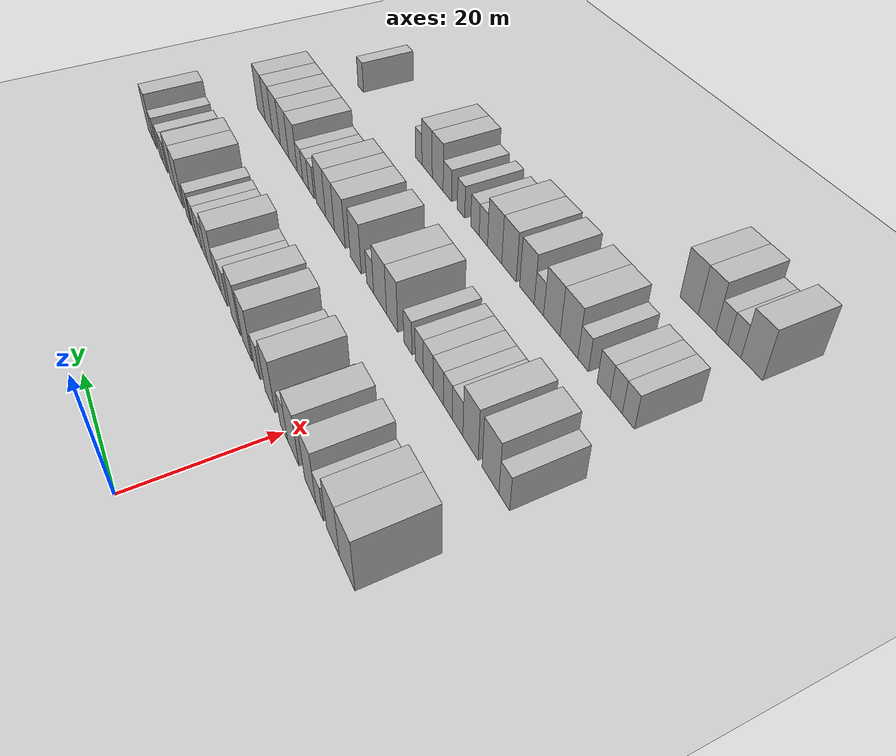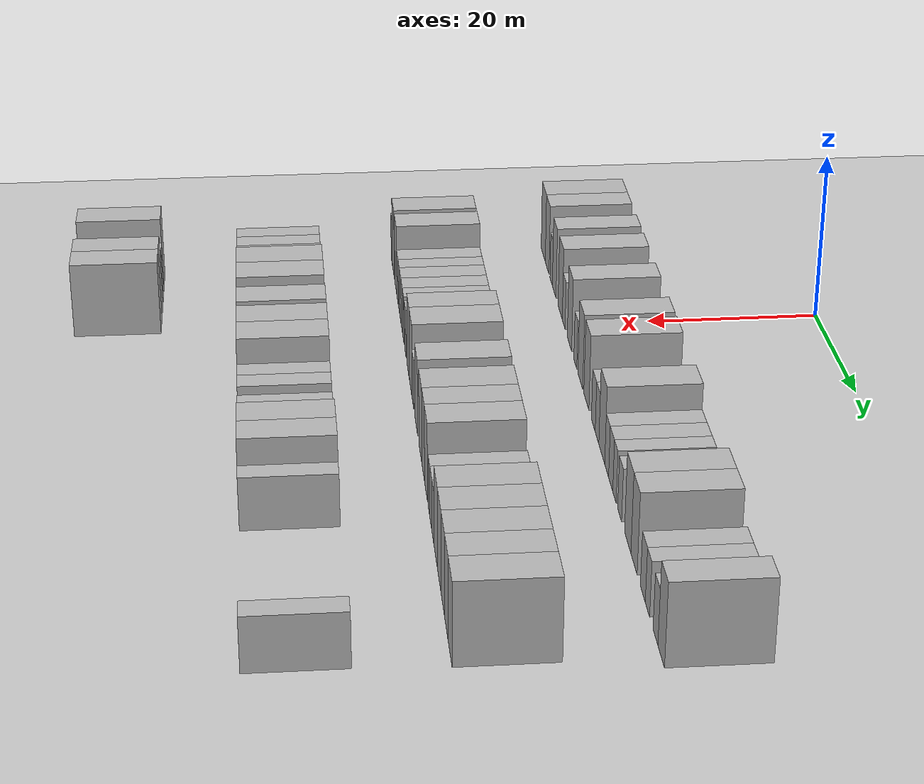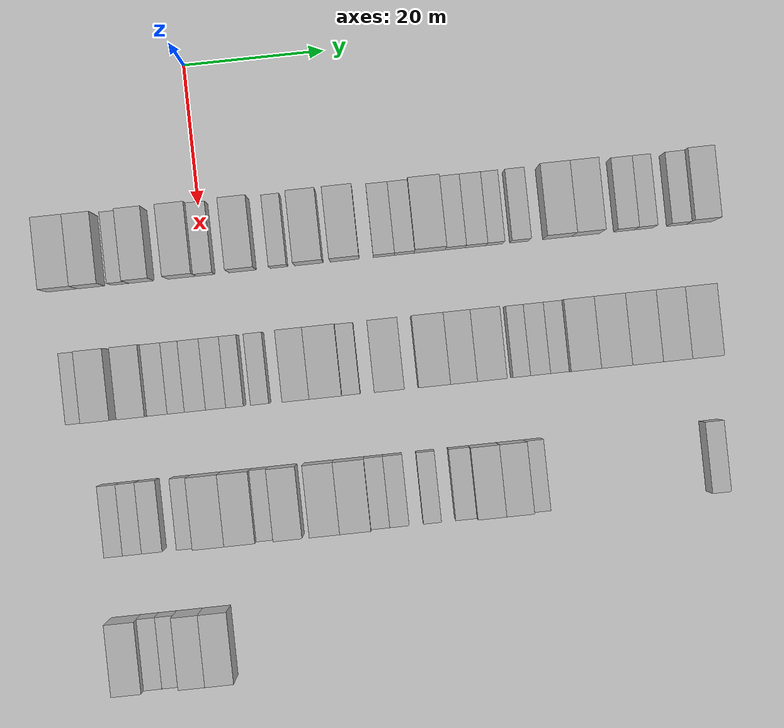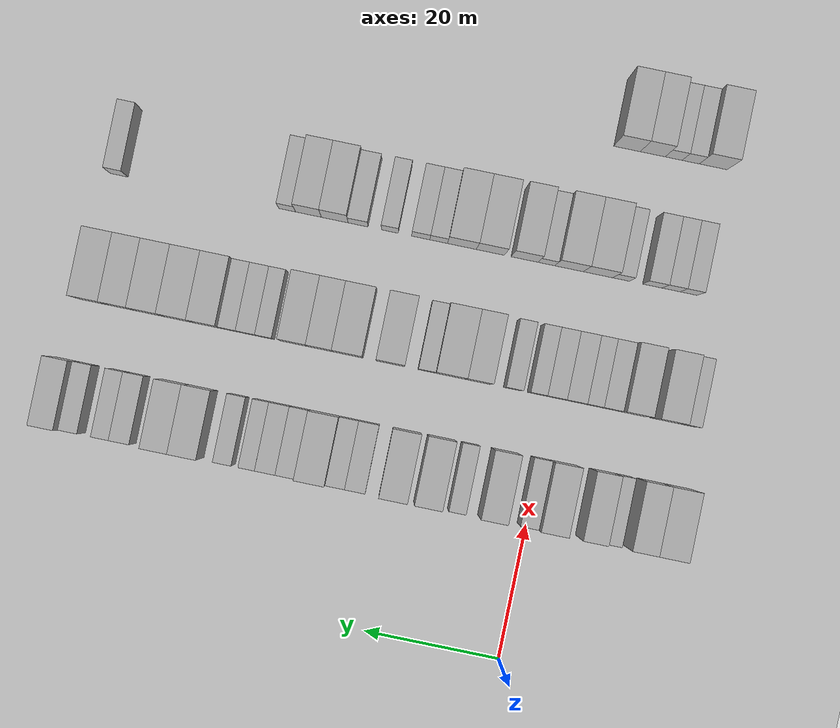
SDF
<sdf version="1.6">
 <world name="default">
  <include><name>ground_plane_1</name><uri>model://HANNAS_ground_plane</uri></include>
  <model name="building_85">
   <static>1</static>
   <pose>25.0000 -20.4585 0 0.000000 0.000000 0.000000</pose>
   <link name="link">
    <pose>0 0 4.50 0 0 0</pose>
    <collision name="collision"><geometry><box><size>10.0000 4.3584 9.0000</size></box></geometry></collision>
    <visual name="visual">
     <cast_shadows>0</cast_shadows>
     <geometry><box><size>10.0000 4.3584 9.0000</size></box></geometry>
     <material>
      <script>
       <uri>model://HANNAS_wall/materials/scripts</uri>
       <uri>model://HANNAS_wall/materials/textures</uri>
       <name>vrc/HANNAS_wall</name>
      </script>
     </material>
    </visual>
   </link>
  </model>
  <model name="building_86">
   <static>1</static>
   <pose>25.0000 -16.3618 0 0.000000 0.000000 0.000000</pose>
   <link name="link">
    <pose>0 0 4.50 0 0 0</pose>
    <collision name="collision"><geometry><box><size>10.0000 3.8350 9.0000</size></box></geometry></collision>
    <visual name="visual">
     <cast_shadows>0</cast_shadows>
     <geometry><box><size>10.0000 3.8350 9.0000</size></box></geometry>
     <material>
      <script>
       <uri>model://HANNAS_wall/materials/scripts</uri>
       <uri>model://HANNAS_wall/materials/textures</uri>
       <name>vrc/HANNAS_wall</name>
      </script>
     </material>
    </visual>
   </link>
  </model>
  <model name="building_87">
   <static>1</static>
   <pose>25.0000 -12.2404 0 0.000000 0.000000 0.000000</pose>
   <link name="link">
    <pose>0 0 3.00 0 0 0</pose>
    <collision name="collision"><geometry><box><size>10.0000 2.4077 6.0000</size></box></geometry></collision>
    <visual name="visual">
     <cast_shadows>0</cast_shadows>
     <geometry><box><size>10.0000 2.4077 6.0000</size></box></geometry>
     <material>
      <script>
       <uri>model://HANNAS_wall/materials/scripts</uri>
       <uri>model://HANNAS_wall/materials/textures</uri>
       <name>vrc/HANNAS_wall</name>
      </script>
     </material>
    </visual>
   </link>
  </model>
  <model name="building_88">
   <static>1</static>
   <pose>25.0000 -9.2104 0 0.000000 0.000000 0.000000</pose>
   <link name="link">
    <pose>0 0 4.50 0 0 0</pose>
    <collision name="collision"><geometry><box><size>10.0000 3.6524 9.0000</size></box></geometry></collision>
    <visual name="visual">
     <cast_shadows>0</cast_shadows>
     <geometry><box><size>10.0000 3.6524 9.0000</size></box></geometry>
     <material>
      <script>
       <uri>model://HANNAS_wall/materials/scripts</uri>
       <uri>model://HANNAS_wall/materials/textures</uri>
       <name>vrc/HANNAS_wall</name>
      </script>
     </material>
    </visual>
   </link>
  </model>
  <model name="building_89">
   <static>1</static>
   <pose>25.0000 -3.3761 0 0.000000 0.000000 0.000000</pose>
   <link name="link">
    <pose>0 0 4.50 0 0 0</pose>
    <collision name="collision"><geometry><box><size>10.0000 4.0163 9.0000</size></box></geometry></collision>
    <visual name="visual">
     <cast_shadows>0</cast_shadows>
     <geometry><box><size>10.0000 4.0163 9.0000</size></box></geometry>
     <material>
      <script>
       <uri>model://HANNAS_wall/materials/scripts</uri>
       <uri>model://HANNAS_wall/materials/textures</uri>
       <name>vrc/HANNAS_wall</name>
      </script>
     </material>
    </visual>
   </link>
  </model>
  <model name="building_90">
   <static>1</static>
   <pose>25.0000 -0.0194 0 0.000000 0.000000 0.000000</pose>
   <link name="link">
    <pose>0 0 3.00 0 0 0</pose>
    <collision name="collision"><geometry><box><size>10.0000 2.6971 6.0000</size></box></geometry></collision>
    <visual name="visual">
     <cast_shadows>0</cast_shadows>
     <geometry><box><size>10.0000 2.6971 6.0000</size></box></geometry>
     <material>
      <script>
       <uri>model://HANNAS_wall/materials/scripts</uri>
       <uri>model://HANNAS_wall/materials/textures</uri>
       <name>vrc/HANNAS_wall</name>
      </script>
     </material>
    </visual>
   </link>
  </model>
  <model name="building_91">
   <static>1</static>
   <pose>25.0000 5.2806 0 0.000000 0.000000 0.000000</pose>
   <link name="link">
    <pose>0 0 4.50 0 0 0</pose>
    <collision name="collision"><geometry><box><size>10.0000 3.9030 9.0000</size></box></geometry></collision>
    <visual name="visual">
     <cast_shadows>0</cast_shadows>
     <geometry><box><size>10.0000 3.9030 9.0000</size></box></geometry>
     <material>
      <script>
       <uri>model://HANNAS_wall/materials/scripts</uri>
       <uri>model://HANNAS_wall/materials/textures</uri>
       <name>vrc/HANNAS_wall</name>
      </script>
     </material>
    </visual>
   </link>
  </model>
  <model name="building_92">
   <static>1</static>
   <pose>25.0000 10.4878 0 0.000000 0.000000 0.000000</pose>
   <link name="link">
    <pose>0 0 3.00 0 0 0</pose>
    <collision name="collision"><geometry><box><size>10.0000 2.5113 6.0000</size></box></geometry></collision>
    <visual name="visual">
     <cast_shadows>0</cast_shadows>
     <geometry><box><size>10.0000 2.5113 6.0000</size></box></geometry>
     <material>
      <script>
       <uri>model://HANNAS_wall/materials/scripts</uri>
       <uri>model://HANNAS_wall/materials/textures</uri>
       <name>vrc/HANNAS_wall</name>
      </script>
     </material>
    </visual>
   </link>
  </model>
  <model name="building_93">
   <static>1</static>
   <pose>25.0000 14.7688 0 0.000000 0.000000 0.000000</pose>
   <link name="link">
    <pose>0 0 4.50 0 0 0</pose>
    <collision name="collision"><geometry><box><size>10.0000 4.0507 9.0000</size></box></geometry></collision>
    <visual name="visual">
     <cast_shadows>0</cast_shadows>
     <geometry><box><size>10.0000 4.0507 9.0000</size></box></geometry>
     <material>
      <script>
       <uri>model://HANNAS_wall/materials/scripts</uri>
       <uri>model://HANNAS_wall/materials/textures</uri>
       <name>vrc/HANNAS_wall</name>
      </script>
     </material>
    </visual>
   </link>
  </model>
  <model name="building_94">
   <static>1</static>
   <pose>25.0000 19.8665 0 0.000000 0.000000 0.000000</pose>
   <link name="link">
    <pose>0 0 4.50 0 0 0</pose>
    <collision name="collision"><geometry><box><size>10.0000 4.1447 9.0000</size></box></geometry></collision>
    <visual name="visual">
     <cast_shadows>0</cast_shadows>
     <geometry><box><size>10.0000 4.1447 9.0000</size></box></geometry>
     <material>
      <script>
       <uri>model://HANNAS_wall/materials/scripts</uri>
       <uri>model://HANNAS_wall/materials/textures</uri>
       <name>vrc/HANNAS_wall</name>
      </script>
     </material>
    </visual>
   </link>
  </model>
  <model name="building_95">
   <static>1</static>
   <pose>25.0000 25.4383 0 0.000000 0.000000 0.000000</pose>
   <link name="link">
    <pose>0 0 3.00 0 0 0</pose>
    <collision name="collision"><geometry><box><size>10.0000 2.9990 6.0000</size></box></geometry></collision>
    <visual name="visual">
     <cast_shadows>0</cast_shadows>
     <geometry><box><size>10.0000 2.9990 6.0000</size></box></geometry>
     <material>
      <script>
       <uri>model://HANNAS_wall/materials/scripts</uri>
       <uri>model://HANNAS_wall/materials/textures</uri>
       <name>vrc/HANNAS_wall</name>
      </script>
     </material>
    </visual>
   </link>
  </model>
  <model name="building_96">
   <static>1</static>
   <pose>25.0000 28.3533 0 0.000000 0.000000 0.000000</pose>
   <link name="link">
    <pose>0 0 3.00 0 0 0</pose>
    <collision name="collision"><geometry><box><size>10.0000 2.8310 6.0000</size></box></geometry></collision>
    <visual name="visual">
     <cast_shadows>0</cast_shadows>
     <geometry><box><size>10.0000 2.8310 6.0000</size></box></geometry>
     <material>
      <script>
       <uri>model://HANNAS_wall/materials/scripts</uri>
       <uri>model://HANNAS_wall/materials/textures</uri>
       <name>vrc/HANNAS_wall</name>
      </script>
     </material>
    </visual>
   </link>
  </model>
  <model name="building_97">
   <static>1</static>
   <pose>25.0000 31.9788 0 0.000000 0.000000 0.000000</pose>
   <link name="link">
    <pose>0 0 4.50 0 0 0</pose>
    <collision name="collision"><geometry><box><size>10.0000 4.4200 9.0000</size></box></geometry></collision>
    <visual name="visual">
     <cast_shadows>0</cast_shadows>
     <geometry><box><size>10.0000 4.4200 9.0000</size></box></geometry>
     <material>
      <script>
       <uri>model://HANNAS_wall/materials/scripts</uri>
       <uri>model://HANNAS_wall/materials/textures</uri>
       <name>vrc/HANNAS_wall</name>
      </script>
     </material>
    </visual>
   </link>
  </model>
  <model name="building_98">
   <static>1</static>
   <pose>25.0000 35.6178 0 0.000000 0.000000 0.000000</pose>
   <link name="link">
    <pose>0 0 3.00 0 0 0</pose>
    <collision name="collision"><geometry><box><size>10.0000 2.8580 6.0000</size></box></geometry></collision>
    <visual name="visual">
     <cast_shadows>0</cast_shadows>
     <geometry><box><size>10.0000 2.8580 6.0000</size></box></geometry>
     <material>
      <script>
       <uri>model://HANNAS_wall/materials/scripts</uri>
       <uri>model://HANNAS_wall/materials/textures</uri>
       <name>vrc/HANNAS_wall</name>
      </script>
     </material>
    </visual>
   </link>
  </model>
  <model name="building_99">
   <static>1</static>
   <pose>25.0000 38.5380 0 0.000000 0.000000 0.000000</pose>
   <link name="link">
    <pose>0 0 3.00 0 0 0</pose>
    <collision name="collision"><geometry><box><size>10.0000 2.9825 6.0000</size></box></geometry></collision>
    <visual name="visual">
     <cast_shadows>0</cast_shadows>
     <geometry><box><size>10.0000 2.9825 6.0000</size></box></geometry>
     <material>
      <script>
       <uri>model://HANNAS_wall/materials/scripts</uri>
       <uri>model://HANNAS_wall/materials/textures</uri>
       <name>vrc/HANNAS_wall</name>
      </script>
     </material>
    </visual>
   </link>
  </model>
  <model name="building_100">
   <static>1</static>
   <pose>25.0000 41.2293 0 0.000000 0.000000 0.000000</pose>
   <link name="link">
    <pose>0 0 3.00 0 0 0</pose>
    <collision name="collision"><geometry><box><size>10.0000 2.4000 6.0000</size></box></geometry></collision>
    <visual name="visual">
     <cast_shadows>0</cast_shadows>
     <geometry><box><size>10.0000 2.4000 6.0000</size></box></geometry>
     <material>
      <script>
       <uri>model://HANNAS_wall/materials/scripts</uri>
       <uri>model://HANNAS_wall/materials/textures</uri>
       <name>vrc/HANNAS_wall</name>
      </script>
     </material>
    </visual>
   </link>
  </model>
  <model name="building_101">
   <static>1</static>
   <pose>25.0000 44.7892 0 0.000000 0.000000 0.000000</pose>
   <link name="link">
    <pose>0 0 3.00 0 0 0</pose>
    <collision name="collision"><geometry><box><size>10.0000 2.7198 6.0000</size></box></geometry></collision>
    <visual name="visual">
     <cast_shadows>0</cast_shadows>
     <geometry><box><size>10.0000 2.7198 6.0000</size></box></geometry>
     <material>
      <script>
       <uri>model://HANNAS_wall/materials/scripts</uri>
       <uri>model://HANNAS_wall/materials/textures</uri>
       <name>vrc/HANNAS_wall</name>
      </script>
     </material>
    </visual>
   </link>
  </model>
  <model name="building_102">
   <static>1</static>
   <pose>25.0000 50.2317 0 0.000000 0.000000 0.000000</pose>
   <link name="link">
    <pose>0 0 4.50 0 0 0</pose>
    <collision name="collision"><geometry><box><size>10.0000 4.1653 9.0000</size></box></geometry></collision>
    <visual name="visual">
     <cast_shadows>0</cast_shadows>
     <geometry><box><size>10.0000 4.1653 9.0000</size></box></geometry>
     <material>
      <script>
       <uri>model://HANNAS_wall/materials/scripts</uri>
       <uri>model://HANNAS_wall/materials/textures</uri>
       <name>vrc/HANNAS_wall</name>
      </script>
     </material>
    </visual>
   </link>
  </model>
  <model name="building_103">
   <static>1</static>
   <pose>25.0000 54.3051 0 0.000000 0.000000 0.000000</pose>
   <link name="link">
    <pose>0 0 4.50 0 0 0</pose>
    <collision name="collision"><geometry><box><size>10.0000 3.9814 9.0000</size></box></geometry></collision>
    <visual name="visual">
     <cast_shadows>0</cast_shadows>
     <geometry><box><size>10.0000 3.9814 9.0000</size></box></geometry>
     <material>
      <script>
       <uri>model://HANNAS_wall/materials/scripts</uri>
       <uri>model://HANNAS_wall/materials/textures</uri>
       <name>vrc/HANNAS_wall</name>
      </script>
     </material>
    </visual>
   </link>
  </model>
  <model name="building_104">
   <static>1</static>
   <pose>25.0000 59.7928 0 0.000000 0.000000 0.000000</pose>
   <link name="link">
    <pose>0 0 3.00 0 0 0</pose>
    <collision name="collision"><geometry><box><size>10.0000 2.9940 6.0000</size></box></geometry></collision>
    <visual name="visual">
     <cast_shadows>0</cast_shadows>
     <geometry><box><size>10.0000 2.9940 6.0000</size></box></geometry>
     <material>
      <script>
       <uri>model://HANNAS_wall/materials/scripts</uri>
       <uri>model://HANNAS_wall/materials/textures</uri>
       <name>vrc/HANNAS_wall</name>
      </script>
     </material>
    </visual>
   </link>
  </model>
  <model name="building_105">
   <static>1</static>
   <pose>25.0000 62.5800 0 0.000000 0.000000 0.000000</pose>
   <link name="link">
    <pose>0 0 3.00 0 0 0</pose>
    <collision name="collision"><geometry><box><size>10.0000 2.5805 6.0000</size></box></geometry></collision>
    <visual name="visual">
     <cast_shadows>0</cast_shadows>
     <geometry><box><size>10.0000 2.5805 6.0000</size></box></geometry>
     <material>
      <script>
       <uri>model://HANNAS_wall/materials/scripts</uri>
       <uri>model://HANNAS_wall/materials/textures</uri>
       <name>vrc/HANNAS_wall</name>
      </script>
     </material>
    </visual>
   </link>
  </model>
  <model name="building_106">
   <static>1</static>
   <pose>25.0000 67.2604 0 0.000000 0.000000 0.000000</pose>
   <link name="link">
    <pose>0 0 3.00 0 0 0</pose>
    <collision name="collision"><geometry><box><size>10.0000 2.7802 6.0000</size></box></geometry></collision>
    <visual name="visual">
     <cast_shadows>0</cast_shadows>
     <geometry><box><size>10.0000 2.7802 6.0000</size></box></geometry>
     <material>
      <script>
       <uri>model://HANNAS_wall/materials/scripts</uri>
       <uri>model://HANNAS_wall/materials/textures</uri>
       <name>vrc/HANNAS_wall</name>
      </script>
     </material>
    </visual>
   </link>
  </model>
  <model name="building_107">
   <static>1</static>
   <pose>25.0000 70.5010 0 0.000000 0.000000 0.000000</pose>
   <link name="link">
    <pose>0 0 4.50 0 0 0</pose>
    <collision name="collision"><geometry><box><size>10.0000 3.7010 9.0000</size></box></geometry></collision>
    <visual name="visual">
     <cast_shadows>0</cast_shadows>
     <geometry><box><size>10.0000 3.7010 9.0000</size></box></geometry>
     <material>
      <script>
       <uri>model://HANNAS_wall/materials/scripts</uri>
       <uri>model://HANNAS_wall/materials/textures</uri>
       <name>vrc/HANNAS_wall</name>
      </script>
     </material>
    </visual>
   </link>
  </model>
  <model name="building_256">
   <static>1</static>
   <pose>44.0000 -19.9561 0 0.000000 0.000000 0.000000</pose>
   <link name="link">
    <pose>0 0 3.00 0 0 0</pose>
    <collision name="collision"><geometry><box><size>10.0000 2.4915 6.0000</size></box></geometry></collision>
    <visual name="visual">
     <cast_shadows>0</cast_shadows>
     <geometry><box><size>10.0000 2.4915 6.0000</size></box></geometry>
     <material>
      <script>
       <uri>model://HANNAS_wall/materials/scripts</uri>
       <uri>model://HANNAS_wall/materials/textures</uri>
       <name>vrc/HANNAS_wall</name>
      </script>
     </material>
    </visual>
   </link>
  </model>
  <model name="building_257">
   <static>1</static>
   <pose>44.0000 -16.6980 0 0.000000 0.000000 0.000000</pose>
   <link name="link">
    <pose>0 0 4.50 0 0 0</pose>
    <collision name="collision"><geometry><box><size>10.0000 4.0246 9.0000</size></box></geometry></collision>
    <visual name="visual">
     <cast_shadows>0</cast_shadows>
     <geometry><box><size>10.0000 4.0246 9.0000</size></box></geometry>
     <material>
      <script>
       <uri>model://HANNAS_wall/materials/scripts</uri>
       <uri>model://HANNAS_wall/materials/textures</uri>
       <name>vrc/HANNAS_wall</name>
      </script>
     </material>
    </visual>
   </link>
  </model>
  <model name="building_258">
   <static>1</static>
   <pose>44.0000 -11.7282 0 0.000000 0.000000 0.000000</pose>
   <link name="link">
    <pose>0 0 4.50 0 0 0</pose>
    <collision name="collision"><geometry><box><size>10.0000 3.9151 9.0000</size></box></geometry></collision>
    <visual name="visual">
     <cast_shadows>0</cast_shadows>
     <geometry><box><size>10.0000 3.9151 9.0000</size></box></geometry>
     <material>
      <script>
       <uri>model://HANNAS_wall/materials/scripts</uri>
       <uri>model://HANNAS_wall/materials/textures</uri>
       <name>vrc/HANNAS_wall</name>
      </script>
     </material>
    </visual>
   </link>
  </model>
  <model name="building_259">
   <static>1</static>
   <pose>44.0000 -8.3479 0 0.000000 0.000000 0.000000</pose>
   <link name="link">
    <pose>0 0 3.00 0 0 0</pose>
    <collision name="collision"><geometry><box><size>10.0000 2.8455 6.0000</size></box></geometry></collision>
    <visual name="visual">
     <cast_shadows>0</cast_shadows>
     <geometry><box><size>10.0000 2.8455 6.0000</size></box></geometry>
     <material>
      <script>
       <uri>model://HANNAS_wall/materials/scripts</uri>
       <uri>model://HANNAS_wall/materials/textures</uri>
       <name>vrc/HANNAS_wall</name>
      </script>
     </material>
    </visual>
   </link>
  </model>
  <model name="building_260">
   <static>1</static>
   <pose>44.0000 -5.7207 0 0.000000 0.000000 0.000000</pose>
   <link name="link">
    <pose>0 0 3.00 0 0 0</pose>
    <collision name="collision"><geometry><box><size>10.0000 2.4090 6.0000</size></box></geometry></collision>
    <visual name="visual">
     <cast_shadows>0</cast_shadows>
     <geometry><box><size>10.0000 2.4090 6.0000</size></box></geometry>
     <material>
      <script>
       <uri>model://HANNAS_wall/materials/scripts</uri>
       <uri>model://HANNAS_wall/materials/textures</uri>
       <name>vrc/HANNAS_wall</name>
      </script>
     </material>
    </visual>
   </link>
  </model>
  <model name="building_261">
   <static>1</static>
   <pose>44.0000 -3.0319 0 0.000000 0.000000 0.000000</pose>
   <link name="link">
    <pose>0 0 3.00 0 0 0</pose>
    <collision name="collision"><geometry><box><size>10.0000 2.9687 6.0000</size></box></geometry></collision>
    <visual name="visual">
     <cast_shadows>0</cast_shadows>
     <geometry><box><size>10.0000 2.9687 6.0000</size></box></geometry>
     <material>
      <script>
       <uri>model://HANNAS_wall/materials/scripts</uri>
       <uri>model://HANNAS_wall/materials/textures</uri>
       <name>vrc/HANNAS_wall</name>
      </script>
     </material>
    </visual>
   </link>
  </model>
  <model name="building_262">
   <static>1</static>
   <pose>44.0000 -0.1286 0 0.000000 0.000000 0.000000</pose>
   <link name="link">
    <pose>0 0 3.00 0 0 0</pose>
    <collision name="collision"><geometry><box><size>10.0000 2.8380 6.0000</size></box></geometry></collision>
    <visual name="visual">
     <cast_shadows>0</cast_shadows>
     <geometry><box><size>10.0000 2.8380 6.0000</size></box></geometry>
     <material>
      <script>
       <uri>model://HANNAS_wall/materials/scripts</uri>
       <uri>model://HANNAS_wall/materials/textures</uri>
       <name>vrc/HANNAS_wall</name>
      </script>
     </material>
    </visual>
   </link>
  </model>
  <model name="building_263">
   <static>1</static>
   <pose>44.0000 2.5183 0 0.000000 0.000000 0.000000</pose>
   <link name="link">
    <pose>0 0 3.00 0 0 0</pose>
    <collision name="collision"><geometry><box><size>10.0000 2.4558 6.0000</size></box></geometry></collision>
    <visual name="visual">
     <cast_shadows>0</cast_shadows>
     <geometry><box><size>10.0000 2.4558 6.0000</size></box></geometry>
     <material>
      <script>
       <uri>model://HANNAS_wall/materials/scripts</uri>
       <uri>model://HANNAS_wall/materials/textures</uri>
       <name>vrc/HANNAS_wall</name>
      </script>
     </material>
    </visual>
   </link>
  </model>
  <model name="building_264">
   <static>1</static>
   <pose>44.0000 6.0266 0 0.000000 0.000000 0.000000</pose>
   <link name="link">
    <pose>0 0 3.00 0 0 0</pose>
    <collision name="collision"><geometry><box><size>10.0000 2.5607 6.0000</size></box></geometry></collision>
    <visual name="visual">
     <cast_shadows>0</cast_shadows>
     <geometry><box><size>10.0000 2.5607 6.0000</size></box></geometry>
     <material>
      <script>
       <uri>model://HANNAS_wall/materials/scripts</uri>
       <uri>model://HANNAS_wall/materials/textures</uri>
       <name>vrc/HANNAS_wall</name>
      </script>
     </material>
    </visual>
   </link>
  </model>
  <model name="building_265">
   <static>1</static>
   <pose>44.0000 11.1810 0 0.000000 0.000000 0.000000</pose>
   <link name="link">
    <pose>0 0 4.50 0 0 0</pose>
    <collision name="collision"><geometry><box><size>10.0000 3.7481 9.0000</size></box></geometry></collision>
    <visual name="visual">
     <cast_shadows>0</cast_shadows>
     <geometry><box><size>10.0000 3.7481 9.0000</size></box></geometry>
     <material>
      <script>
       <uri>model://HANNAS_wall/materials/scripts</uri>
       <uri>model://HANNAS_wall/materials/textures</uri>
       <name>vrc/HANNAS_wall</name>
      </script>
     </material>
    </visual>
   </link>
  </model>
  <model name="building_266">
   <static>1</static>
   <pose>44.0000 15.3042 0 0.000000 0.000000 0.000000</pose>
   <link name="link">
    <pose>0 0 4.50 0 0 0</pose>
    <collision name="collision"><geometry><box><size>10.0000 4.4983 9.0000</size></box></geometry></collision>
    <visual name="visual">
     <cast_shadows>0</cast_shadows>
     <geometry><box><size>10.0000 4.4983 9.0000</size></box></geometry>
     <material>
      <script>
       <uri>model://HANNAS_wall/materials/scripts</uri>
       <uri>model://HANNAS_wall/materials/textures</uri>
       <name>vrc/HANNAS_wall</name>
      </script>
     </material>
    </visual>
   </link>
  </model>
  <model name="building_267">
   <static>1</static>
   <pose>44.0000 18.8247 0 0.000000 0.000000 0.000000</pose>
   <link name="link">
    <pose>0 0 3.00 0 0 0</pose>
    <collision name="collision"><geometry><box><size>10.0000 2.5428 6.0000</size></box></geometry></collision>
    <visual name="visual">
     <cast_shadows>0</cast_shadows>
     <geometry><box><size>10.0000 2.5428 6.0000</size></box></geometry>
     <material>
      <script>
       <uri>model://HANNAS_wall/materials/scripts</uri>
       <uri>model://HANNAS_wall/materials/textures</uri>
       <name>vrc/HANNAS_wall</name>
      </script>
     </material>
    </visual>
   </link>
  </model>
  <model name="building_268">
   <static>1</static>
   <pose>44.0000 24.1879 0 0.000000 0.000000 0.000000</pose>
   <link name="link">
    <pose>0 0 4.50 0 0 0</pose>
    <collision name="collision"><geometry><box><size>10.0000 4.1836 9.0000</size></box></geometry></collision>
    <visual name="visual">
     <cast_shadows>0</cast_shadows>
     <geometry><box><size>10.0000 4.1836 9.0000</size></box></geometry>
     <material>
      <script>
       <uri>model://HANNAS_wall/materials/scripts</uri>
       <uri>model://HANNAS_wall/materials/textures</uri>
       <name>vrc/HANNAS_wall</name>
      </script>
     </material>
    </visual>
   </link>
  </model>
  <model name="building_269">
   <static>1</static>
   <pose>44.0000 30.4868 0 0.000000 0.000000 0.000000</pose>
   <link name="link">
    <pose>0 0 4.50 0 0 0</pose>
    <collision name="collision"><geometry><box><size>10.0000 4.4141 9.0000</size></box></geometry></collision>
    <visual name="visual">
     <cast_shadows>0</cast_shadows>
     <geometry><box><size>10.0000 4.4141 9.0000</size></box></geometry>
     <material>
      <script>
       <uri>model://HANNAS_wall/materials/scripts</uri>
       <uri>model://HANNAS_wall/materials/textures</uri>
       <name>vrc/HANNAS_wall</name>
      </script>
     </material>
    </visual>
   </link>
  </model>
  <model name="building_270">
   <static>1</static>
   <pose>44.0000 34.5573 0 0.000000 0.000000 0.000000</pose>
   <link name="link">
    <pose>0 0 4.50 0 0 0</pose>
    <collision name="collision"><geometry><box><size>10.0000 3.7269 9.0000</size></box></geometry></collision>
    <visual name="visual">
     <cast_shadows>0</cast_shadows>
     <geometry><box><size>10.0000 3.7269 9.0000</size></box></geometry>
     <material>
      <script>
       <uri>model://HANNAS_wall/materials/scripts</uri>
       <uri>model://HANNAS_wall/materials/textures</uri>
       <name>vrc/HANNAS_wall</name>
      </script>
     </material>
    </visual>
   </link>
  </model>
  <model name="building_271">
   <static>1</static>
   <pose>44.0000 38.4824 0 0.000000 0.000000 0.000000</pose>
   <link name="link">
    <pose>0 0 4.50 0 0 0</pose>
    <collision name="collision"><geometry><box><size>10.0000 4.1233 9.0000</size></box></geometry></collision>
    <visual name="visual">
     <cast_shadows>0</cast_shadows>
     <geometry><box><size>10.0000 4.1233 9.0000</size></box></geometry>
     <material>
      <script>
       <uri>model://HANNAS_wall/materials/scripts</uri>
       <uri>model://HANNAS_wall/materials/textures</uri>
       <name>vrc/HANNAS_wall</name>
      </script>
     </material>
    </visual>
   </link>
  </model>
  <model name="building_272">
   <static>1</static>
   <pose>44.0000 42.7701 0 0.000000 0.000000 0.000000</pose>
   <link name="link">
    <pose>0 0 3.00 0 0 0</pose>
    <collision name="collision"><geometry><box><size>10.0000 2.4521 6.0000</size></box></geometry></collision>
    <visual name="visual">
     <cast_shadows>0</cast_shadows>
     <geometry><box><size>10.0000 2.4521 6.0000</size></box></geometry>
     <material>
      <script>
       <uri>model://HANNAS_wall/materials/scripts</uri>
       <uri>model://HANNAS_wall/materials/textures</uri>
       <name>vrc/HANNAS_wall</name>
      </script>
     </material>
    </visual>
   </link>
  </model>
  <model name="building_273">
   <static>1</static>
   <pose>44.0000 45.4004 0 0.000000 0.000000 0.000000</pose>
   <link name="link">
    <pose>0 0 3.00 0 0 0</pose>
    <collision name="collision"><geometry><box><size>10.0000 2.8085 6.0000</size></box></geometry></collision>
    <visual name="visual">
     <cast_shadows>0</cast_shadows>
     <geometry><box><size>10.0000 2.8085 6.0000</size></box></geometry>
     <material>
      <script>
       <uri>model://HANNAS_wall/materials/scripts</uri>
       <uri>model://HANNAS_wall/materials/textures</uri>
       <name>vrc/HANNAS_wall</name>
      </script>
     </material>
    </visual>
   </link>
  </model>
  <model name="building_274">
   <static>1</static>
   <pose>44.0000 48.1123 0 0.000000 0.000000 0.000000</pose>
   <link name="link">
    <pose>0 0 3.00 0 0 0</pose>
    <collision name="collision"><geometry><box><size>10.0000 2.6153 6.0000</size></box></geometry></collision>
    <visual name="visual">
     <cast_shadows>0</cast_shadows>
     <geometry><box><size>10.0000 2.6153 6.0000</size></box></geometry>
     <material>
      <script>
       <uri>model://HANNAS_wall/materials/scripts</uri>
       <uri>model://HANNAS_wall/materials/textures</uri>
       <name>vrc/HANNAS_wall</name>
      </script>
     </material>
    </visual>
   </link>
  </model>
  <model name="building_275">
   <static>1</static>
   <pose>44.0000 51.5263 0 0.000000 0.000000 0.000000</pose>
   <link name="link">
    <pose>0 0 4.50 0 0 0</pose>
    <collision name="collision"><geometry><box><size>10.0000 4.2127 9.0000</size></box></geometry></collision>
    <visual name="visual">
     <cast_shadows>0</cast_shadows>
     <geometry><box><size>10.0000 4.2127 9.0000</size></box></geometry>
     <material>
      <script>
       <uri>model://HANNAS_wall/materials/scripts</uri>
       <uri>model://HANNAS_wall/materials/textures</uri>
       <name>vrc/HANNAS_wall</name>
      </script>
     </material>
    </visual>
   </link>
  </model>
  <model name="building_276">
   <static>1</static>
   <pose>44.0000 55.7948 0 0.000000 0.000000 0.000000</pose>
   <link name="link">
    <pose>0 0 4.50 0 0 0</pose>
    <collision name="collision"><geometry><box><size>10.0000 4.3244 9.0000</size></box></geometry></collision>
    <visual name="visual">
     <cast_shadows>0</cast_shadows>
     <geometry><box><size>10.0000 4.3244 9.0000</size></box></geometry>
     <material>
      <script>
       <uri>model://HANNAS_wall/materials/scripts</uri>
       <uri>model://HANNAS_wall/materials/textures</uri>
       <name>vrc/HANNAS_wall</name>
      </script>
     </material>
    </visual>
   </link>
  </model>
  <model name="building_277">
   <static>1</static>
   <pose>44.0000 60.0898 0 0.000000 0.000000 0.000000</pose>
   <link name="link">
    <pose>0 0 4.50 0 0 0</pose>
    <collision name="collision"><geometry><box><size>10.0000 4.2655 9.0000</size></box></geometry></collision>
    <visual name="visual">
     <cast_shadows>0</cast_shadows>
     <geometry><box><size>10.0000 4.2655 9.0000</size></box></geometry>
     <material>
      <script>
       <uri>model://HANNAS_wall/materials/scripts</uri>
       <uri>model://HANNAS_wall/materials/textures</uri>
       <name>vrc/HANNAS_wall</name>
      </script>
     </material>
    </visual>
   </link>
  </model>
  <model name="building_278">
   <static>1</static>
   <pose>44.0000 64.2443 0 0.000000 0.000000 0.000000</pose>
   <link name="link">
    <pose>0 0 4.50 0 0 0</pose>
    <collision name="collision"><geometry><box><size>10.0000 4.0435 9.0000</size></box></geometry></collision>
    <visual name="visual">
     <cast_shadows>0</cast_shadows>
     <geometry><box><size>10.0000 4.0435 9.0000</size></box></geometry>
     <material>
      <script>
       <uri>model://HANNAS_wall/materials/scripts</uri>
       <uri>model://HANNAS_wall/materials/textures</uri>
       <name>vrc/HANNAS_wall</name>
      </script>
     </material>
    </visual>
   </link>
  </model>
  <model name="building_279">
   <static>1</static>
   <pose>44.0000 68.4744 0 0.000000 0.000000 0.000000</pose>
   <link name="link">
    <pose>0 0 4.50 0 0 0</pose>
    <collision name="collision"><geometry><box><size>10.0000 4.4166 9.0000</size></box></geometry></collision>
    <visual name="visual">
     <cast_shadows>0</cast_shadows>
     <geometry><box><size>10.0000 4.4166 9.0000</size></box></geometry>
     <material>
      <script>
       <uri>model://HANNAS_wall/materials/scripts</uri>
       <uri>model://HANNAS_wall/materials/textures</uri>
       <name>vrc/HANNAS_wall</name>
      </script>
     </material>
    </visual>
   </link>
  </model>
  <model name="building_434">
   <static>1</static>
   <pose>63.0000 -16.5057 0 0.000000 0.000000 0.000000</pose>
   <link name="link">
    <pose>0 0 3.00 0 0 0</pose>
    <collision name="collision"><geometry><box><size>10.0000 2.5976 6.0000</size></box></geometry></collision>
    <visual name="visual">
     <cast_shadows>0</cast_shadows>
     <geometry><box><size>10.0000 2.5976 6.0000</size></box></geometry>
     <material>
      <script>
       <uri>model://HANNAS_wall/materials/scripts</uri>
       <uri>model://HANNAS_wall/materials/textures</uri>
       <name>vrc/HANNAS_wall</name>
      </script>
     </material>
    </visual>
   </link>
  </model>
  <model name="building_435">
   <static>1</static>
   <pose>63.0000 -13.8715 0 0.000000 0.000000 0.000000</pose>
   <link name="link">
    <pose>0 0 3.00 0 0 0</pose>
    <collision name="collision"><geometry><box><size>10.0000 2.6709 6.0000</size></box></geometry></collision>
    <visual name="visual">
     <cast_shadows>0</cast_shadows>
     <geometry><box><size>10.0000 2.6709 6.0000</size></box></geometry>
     <material>
      <script>
       <uri>model://HANNAS_wall/materials/scripts</uri>
       <uri>model://HANNAS_wall/materials/textures</uri>
       <name>vrc/HANNAS_wall</name>
      </script>
     </material>
    </visual>
   </link>
  </model>
  <model name="building_436">
   <static>1</static>
   <pose>63.0000 -11.0898 0 0.000000 0.000000 0.000000</pose>
   <link name="link">
    <pose>0 0 3.00 0 0 0</pose>
    <collision name="collision"><geometry><box><size>10.0000 2.8925 6.0000</size></box></geometry></collision>
    <visual name="visual">
     <cast_shadows>0</cast_shadows>
     <geometry><box><size>10.0000 2.8925 6.0000</size></box></geometry>
     <material>
      <script>
       <uri>model://HANNAS_wall/materials/scripts</uri>
       <uri>model://HANNAS_wall/materials/textures</uri>
       <name>vrc/HANNAS_wall</name>
      </script>
     </material>
    </visual>
   </link>
  </model>
  <model name="building_437">
   <static>1</static>
   <pose>63.0000 -6.3960 0 0.000000 0.000000 0.000000</pose>
   <link name="link">
    <pose>0 0 3.00 0 0 0</pose>
    <collision name="collision"><geometry><box><size>10.0000 2.4951 6.0000</size></box></geometry></collision>
    <visual name="visual">
     <cast_shadows>0</cast_shadows>
     <geometry><box><size>10.0000 2.4951 6.0000</size></box></geometry>
     <material>
      <script>
       <uri>model://HANNAS_wall/materials/scripts</uri>
       <uri>model://HANNAS_wall/materials/textures</uri>
       <name>vrc/HANNAS_wall</name>
      </script>
     </material>
    </visual>
   </link>
  </model>
  <model name="building_438">
   <static>1</static>
   <pose>63.0000 -2.9537 0 0.000000 0.000000 0.000000</pose>
   <link name="link">
    <pose>0 0 4.50 0 0 0</pose>
    <collision name="collision"><geometry><box><size>10.0000 4.3895 9.0000</size></box></geometry></collision>
    <visual name="visual">
     <cast_shadows>0</cast_shadows>
     <geometry><box><size>10.0000 4.3895 9.0000</size></box></geometry>
     <material>
      <script>
       <uri>model://HANNAS_wall/materials/scripts</uri>
       <uri>model://HANNAS_wall/materials/textures</uri>
       <name>vrc/HANNAS_wall</name>
      </script>
     </material>
    </visual>
   </link>
  </model>
  <model name="building_439">
   <static>1</static>
   <pose>63.0000 1.3851 0 0.000000 0.000000 0.000000</pose>
   <link name="link">
    <pose>0 0 4.50 0 0 0</pose>
    <collision name="collision"><geometry><box><size>10.0000 4.2881 9.0000</size></box></geometry></collision>
    <visual name="visual">
     <cast_shadows>0</cast_shadows>
     <geometry><box><size>10.0000 4.2881 9.0000</size></box></geometry>
     <material>
      <script>
       <uri>model://HANNAS_wall/materials/scripts</uri>
       <uri>model://HANNAS_wall/materials/textures</uri>
       <name>vrc/HANNAS_wall</name>
      </script>
     </material>
    </visual>
   </link>
  </model>
  <model name="building_440">
   <static>1</static>
   <pose>63.0000 4.7868 0 0.000000 0.000000 0.000000</pose>
   <link name="link">
    <pose>0 0 3.00 0 0 0</pose>
    <collision name="collision"><geometry><box><size>10.0000 2.5152 6.0000</size></box></geometry></collision>
    <visual name="visual">
     <cast_shadows>0</cast_shadows>
     <geometry><box><size>10.0000 2.5152 6.0000</size></box></geometry>
     <material>
      <script>
       <uri>model://HANNAS_wall/materials/scripts</uri>
       <uri>model://HANNAS_wall/materials/textures</uri>
       <name>vrc/HANNAS_wall</name>
      </script>
     </material>
    </visual>
   </link>
  </model>
  <model name="building_441">
   <static>1</static>
   <pose>63.0000 8.0579 0 0.000000 0.000000 0.000000</pose>
   <link name="link">
    <pose>0 0 4.50 0 0 0</pose>
    <collision name="collision"><geometry><box><size>10.0000 4.0271 9.0000</size></box></geometry></collision>
    <visual name="visual">
     <cast_shadows>0</cast_shadows>
     <geometry><box><size>10.0000 4.0271 9.0000</size></box></geometry>
     <material>
      <script>
       <uri>model://HANNAS_wall/materials/scripts</uri>
       <uri>model://HANNAS_wall/materials/textures</uri>
       <name>vrc/HANNAS_wall</name>
      </script>
     </material>
    </visual>
   </link>
  </model>
  <model name="building_442">
   <static>1</static>
   <pose>63.0000 13.1816 0 0.000000 0.000000 0.000000</pose>
   <link name="link">
    <pose>0 0 4.50 0 0 0</pose>
    <collision name="collision"><geometry><box><size>10.0000 4.2204 9.0000</size></box></geometry></collision>
    <visual name="visual">
     <cast_shadows>0</cast_shadows>
     <geometry><box><size>10.0000 4.2204 9.0000</size></box></geometry>
     <material>
      <script>
       <uri>model://HANNAS_wall/materials/scripts</uri>
       <uri>model://HANNAS_wall/materials/textures</uri>
       <name>vrc/HANNAS_wall</name>
      </script>
     </material>
    </visual>
   </link>
  </model>
  <model name="building_443">
   <static>1</static>
   <pose>63.0000 17.4598 0 0.000000 0.000000 0.000000</pose>
   <link name="link">
    <pose>0 0 4.50 0 0 0</pose>
    <collision name="collision"><geometry><box><size>10.0000 4.3359 9.0000</size></box></geometry></collision>
    <visual name="visual">
     <cast_shadows>0</cast_shadows>
     <geometry><box><size>10.0000 4.3359 9.0000</size></box></geometry>
     <material>
      <script>
       <uri>model://HANNAS_wall/materials/scripts</uri>
       <uri>model://HANNAS_wall/materials/textures</uri>
       <name>vrc/HANNAS_wall</name>
      </script>
     </material>
    </visual>
   </link>
  </model>
  <model name="building_444">
   <static>1</static>
   <pose>63.0000 20.9447 0 0.000000 0.000000 0.000000</pose>
   <link name="link">
    <pose>0 0 3.00 0 0 0</pose>
    <collision name="collision"><geometry><box><size>10.0000 2.6339 6.0000</size></box></geometry></collision>
    <visual name="visual">
     <cast_shadows>0</cast_shadows>
     <geometry><box><size>10.0000 2.6339 6.0000</size></box></geometry>
     <material>
      <script>
       <uri>model://HANNAS_wall/materials/scripts</uri>
       <uri>model://HANNAS_wall/materials/textures</uri>
       <name>vrc/HANNAS_wall</name>
      </script>
     </material>
    </visual>
   </link>
  </model>
  <model name="building_445">
   <static>1</static>
   <pose>63.0000 23.6204 0 0.000000 0.000000 0.000000</pose>
   <link name="link">
    <pose>0 0 3.00 0 0 0</pose>
    <collision name="collision"><geometry><box><size>10.0000 2.7175 6.0000</size></box></geometry></collision>
    <visual name="visual">
     <cast_shadows>0</cast_shadows>
     <geometry><box><size>10.0000 2.7175 6.0000</size></box></geometry>
     <material>
      <script>
       <uri>model://HANNAS_wall/materials/scripts</uri>
       <uri>model://HANNAS_wall/materials/textures</uri>
       <name>vrc/HANNAS_wall</name>
      </script>
     </material>
    </visual>
   </link>
  </model>
  <model name="building_446">
   <static>1</static>
   <pose>63.0000 28.2461 0 0.000000 0.000000 0.000000</pose>
   <link name="link">
    <pose>0 0 3.00 0 0 0</pose>
    <collision name="collision"><geometry><box><size>10.0000 2.5341 6.0000</size></box></geometry></collision>
    <visual name="visual">
     <cast_shadows>0</cast_shadows>
     <geometry><box><size>10.0000 2.5341 6.0000</size></box></geometry>
     <material>
      <script>
       <uri>model://HANNAS_wall/materials/scripts</uri>
       <uri>model://HANNAS_wall/materials/textures</uri>
       <name>vrc/HANNAS_wall</name>
      </script>
     </material>
    </visual>
   </link>
  </model>
  <model name="building_447">
   <static>1</static>
   <pose>63.0000 33.0013 0 0.000000 0.000000 0.000000</pose>
   <link name="link">
    <pose>0 0 3.00 0 0 0</pose>
    <collision name="collision"><geometry><box><size>10.0000 2.9763 6.0000</size></box></geometry></collision>
    <visual name="visual">
     <cast_shadows>0</cast_shadows>
     <geometry><box><size>10.0000 2.9763 6.0000</size></box></geometry>
     <material>
      <script>
       <uri>model://HANNAS_wall/materials/scripts</uri>
       <uri>model://HANNAS_wall/materials/textures</uri>
       <name>vrc/HANNAS_wall</name>
      </script>
     </material>
    </visual>
   </link>
  </model>
  <model name="building_448">
   <static>1</static>
   <pose>63.0000 36.4884 0 0.000000 0.000000 0.000000</pose>
   <link name="link">
    <pose>0 0 4.50 0 0 0</pose>
    <collision name="collision"><geometry><box><size>10.0000 3.9978 9.0000</size></box></geometry></collision>
    <visual name="visual">
     <cast_shadows>0</cast_shadows>
     <geometry><box><size>10.0000 3.9978 9.0000</size></box></geometry>
     <material>
      <script>
       <uri>model://HANNAS_wall/materials/scripts</uri>
       <uri>model://HANNAS_wall/materials/textures</uri>
       <name>vrc/HANNAS_wall</name>
      </script>
     </material>
    </visual>
   </link>
  </model>
  <model name="building_449">
   <static>1</static>
   <pose>63.0000 40.4188 0 0.000000 0.000000 0.000000</pose>
   <link name="link">
    <pose>0 0 4.50 0 0 0</pose>
    <collision name="collision"><geometry><box><size>10.0000 3.8631 9.0000</size></box></geometry></collision>
    <visual name="visual">
     <cast_shadows>0</cast_shadows>
     <geometry><box><size>10.0000 3.8631 9.0000</size></box></geometry>
     <material>
      <script>
       <uri>model://HANNAS_wall/materials/scripts</uri>
       <uri>model://HANNAS_wall/materials/textures</uri>
       <name>vrc/HANNAS_wall</name>
      </script>
     </material>
    </visual>
   </link>
  </model>
  <model name="building_450">
   <static>1</static>
   <pose>63.0000 43.5991 0 0.000000 0.000000 0.000000</pose>
   <link name="link">
    <pose>0 0 3.00 0 0 0</pose>
    <collision name="collision"><geometry><box><size>10.0000 2.4974 6.0000</size></box></geometry></collision>
    <visual name="visual">
     <cast_shadows>0</cast_shadows>
     <geometry><box><size>10.0000 2.4974 6.0000</size></box></geometry>
     <material>
      <script>
       <uri>model://HANNAS_wall/materials/scripts</uri>
       <uri>model://HANNAS_wall/materials/textures</uri>
       <name>vrc/HANNAS_wall</name>
      </script>
     </material>
    </visual>
   </link>
  </model>
  <model name="building_451">
   <static>1</static>
   <pose>63.0000 68.8240 0 0.000000 0.000000 0.000000</pose>
   <link name="link">
    <pose>0 0 3.00 0 0 0</pose>
    <collision name="collision"><geometry><box><size>10.0000 2.6509 6.0000</size></box></geometry></collision>
    <visual name="visual">
     <cast_shadows>0</cast_shadows>
     <geometry><box><size>10.0000 2.6509 6.0000</size></box></geometry>
     <material>
      <script>
       <uri>model://HANNAS_wall/materials/scripts</uri>
       <uri>model://HANNAS_wall/materials/textures</uri>
       <name>vrc/HANNAS_wall</name>
      </script>
     </material>
    </visual>
   </link>
  </model>
  <model name="building_604">
   <static>1</static>
   <pose>82.0000 -16.3483 0 0.000000 0.000000 0.000000</pose>
   <link name="link">
    <pose>0 0 4.50 0 0 0</pose>
    <collision name="collision"><geometry><box><size>10.0000 4.1995 9.0000</size></box></geometry></collision>
    <visual name="visual">
     <cast_shadows>0</cast_shadows>
     <geometry><box><size>10.0000 4.1995 9.0000</size></box></geometry>
     <material>
      <script>
       <uri>model://HANNAS_wall/materials/scripts</uri>
       <uri>model://HANNAS_wall/materials/textures</uri>
       <name>vrc/HANNAS_wall</name>
      </script>
     </material>
    </visual>
   </link>
  </model>
  <model name="building_605">
   <static>1</static>
   <pose>82.0000 -12.9643 0 0.000000 0.000000 0.000000</pose>
   <link name="link">
    <pose>0 0 3.00 0 0 0</pose>
    <collision name="collision"><geometry><box><size>10.0000 2.5686 6.0000</size></box></geometry></collision>
    <visual name="visual">
     <cast_shadows>0</cast_shadows>
     <geometry><box><size>10.0000 2.5686 6.0000</size></box></geometry>
     <material>
      <script>
       <uri>model://HANNAS_wall/materials/scripts</uri>
       <uri>model://HANNAS_wall/materials/textures</uri>
       <name>vrc/HANNAS_wall</name>
      </script>
     </material>
    </visual>
   </link>
  </model>
  <model name="building_606">
   <static>1</static>
   <pose>82.0000 -10.4094 0 0.000000 0.000000 0.000000</pose>
   <link name="link">
    <pose>0 0 3.00 0 0 0</pose>
    <collision name="collision"><geometry><box><size>10.0000 2.5410 6.0000</size></box></geometry></collision>
    <visual name="visual">
     <cast_shadows>0</cast_shadows>
     <geometry><box><size>10.0000 2.5410 6.0000</size></box></geometry>
     <material>
      <script>
       <uri>model://HANNAS_wall/materials/scripts</uri>
       <uri>model://HANNAS_wall/materials/textures</uri>
       <name>vrc/HANNAS_wall</name>
      </script>
     </material>
    </visual>
   </link>
  </model>
  <model name="building_607">
   <static>1</static>
   <pose>82.0000 -7.2807 0 0.000000 0.000000 0.000000</pose>
   <link name="link">
    <pose>0 0 4.50 0 0 0</pose>
    <collision name="collision"><geometry><box><size>10.0000 3.7166 9.0000</size></box></geometry></collision>
    <visual name="visual">
     <cast_shadows>0</cast_shadows>
     <geometry><box><size>10.0000 3.7166 9.0000</size></box></geometry>
     <material>
      <script>
       <uri>model://HANNAS_wall/materials/scripts</uri>
       <uri>model://HANNAS_wall/materials/textures</uri>
       <name>vrc/HANNAS_wall</name>
      </script>
     </material>
    </visual>
   </link>
  </model>
  <model name="building_608">
   <static>1</static>
   <pose>82.0000 -3.4194 0 0.000000 0.000000 0.000000</pose>
   <link name="link">
    <pose>0 0 4.50 0 0 0</pose>
    <collision name="collision"><geometry><box><size>10.0000 4.0059 9.0000</size></box></geometry></collision>
    <visual name="visual">
     <cast_shadows>0</cast_shadows>
     <geometry><box><size>10.0000 4.0059 9.0000</size></box></geometry>
     <material>
      <script>
       <uri>model://HANNAS_wall/materials/scripts</uri>
       <uri>model://HANNAS_wall/materials/textures</uri>
       <name>vrc/HANNAS_wall</name>
      </script>
     </material>
    </visual>
   </link>
  </model>
 </world>
</sdf>
